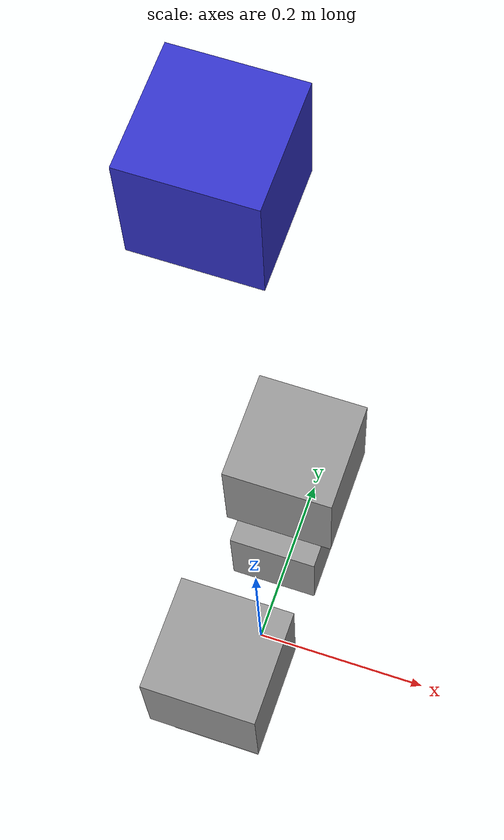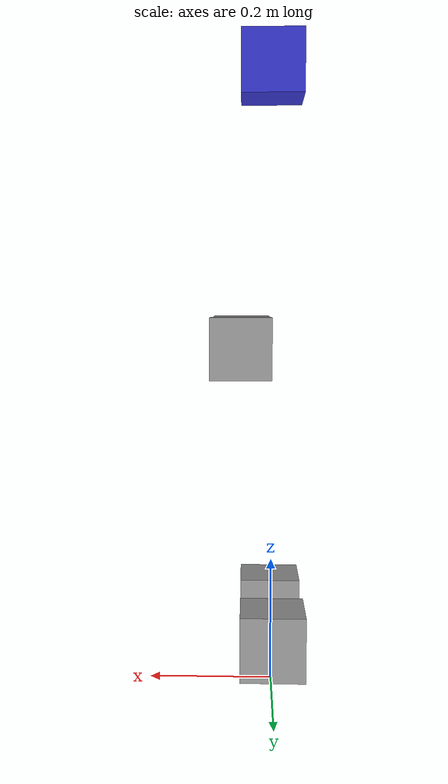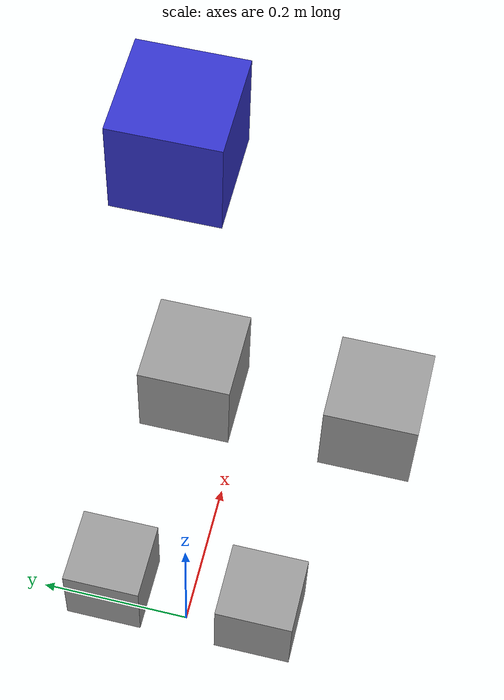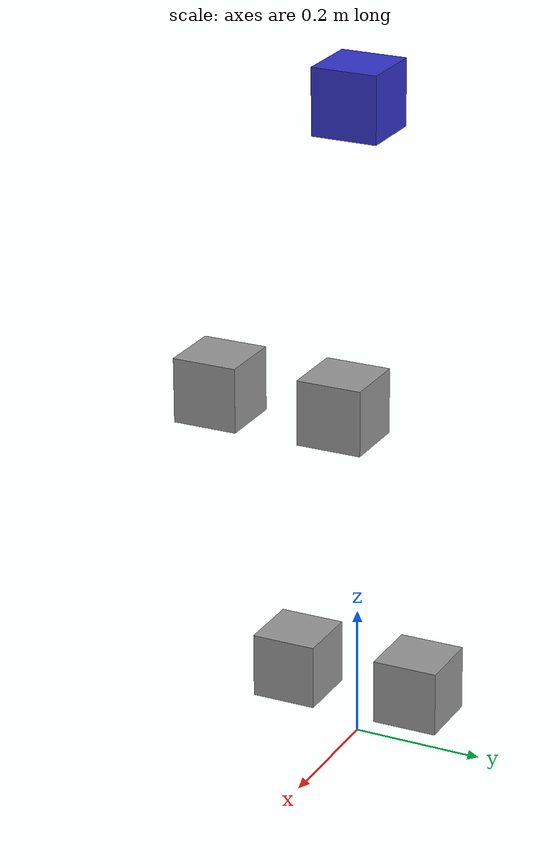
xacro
<?xml version="1.0"?>
<robot name="sprinter" xmlns:xacro="http://www.ros.org/wiki/xacro">

  <xacro:include filename="$(find sprinter_description)/urdf/leg_macro.xacro" />

  <material name="Grey"><color rgba="0.6 0.6 0.6 1.0"/></material>
  <material name="Blue"><color rgba="0.2 0.2 0.8 1.0"/></material>

  <link name="world"/>

  <link name="base_link">
    <visual>
      <geometry>
        <box size="0.1 0.1 0.1"/>
      </geometry>
      <material name="Blue"/>
    </visual>
    <collision>
      <geometry>
        <box size="0.1 0.1 0.1"/>
      </geometry>
    </collision>
    <inertial>
      <mass value="15.0"/>
      <inertia ixx="0.5" ixy="0" ixz="0" iyy="0.5" iyz="0" izz="0.5"/>
    </inertial>
  </link>

  <joint name="world_to_base_joint" type="fixed">
    <parent link="world"/>
    <child link="base_link"/>
    <origin xyz="0 0 1.0" rpy="0 0 0"/>
  </joint>

  <xacro:leg prefix="left" reflect="1"/>
  <xacro:leg prefix="right" reflect="-1"/>

  <ros2_control name="GazeboSystem" type="system">
    <hardware>
      <plugin>gz_ros2_control/GazeboSimSystem</plugin>
    </hardware>
    <joint name="left_hip_joint">
      <command_interface name="position"/>
      <state_interface name="position"/><state_interface name="velocity"/>
    </joint>
    <joint name="right_hip_joint">
      <command_interface name="position"/>
      <state_interface name="position"/><state_interface name="velocity"/>
    </joint>
    <joint name="left_knee_joint">
      <command_interface name="position"/>
      <state_interface name="position"/><state_interface name="velocity"/>
    </joint>
    <joint name="right_knee_joint">
      <command_interface name="position"/>
      <state_interface name="position"/><state_interface name="velocity"/>
    </joint>
  </ros2_control>

  <xacro:arg name="controllers_file" default=""/>

  <gazebo>
    <plugin filename="libgz_ros2_control-system.so" name="gz_ros2_control::GazeboSimROS2ControlPlugin">
        <parameters>$(arg controllers_file)</parameters>
    </plugin>
  </gazebo>

</robot>

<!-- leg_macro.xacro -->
<robot xmlns:xacro="http://www.ros.org/wiki/xacro">

  <!-- LEG MACRO                                                           -->
  <xacro:macro name="leg" params="prefix reflect">

    <!-- Hip Joint -->
    <joint name="${prefix}_hip_joint" type="revolute">
      <parent link="base_link"/>
      <child link="${prefix}_thigh_link"/>
      <origin xyz="0 ${0.1 * reflect} 0" rpy="0 0 0"/>
      <axis xyz="0 1 0"/>
      <limit lower="-1.57" upper="1.57" effort="100" velocity="10"/>
    </joint>

    <!-- Thigh Link - Oberschenkel -->
    <link name="${prefix}_thigh_link">
      <visual>
        <origin xyz="0.05 -0.10 -0.45" rpy="1.5708 0 0"/>
        <geometry>
          <box size="0.1 0.1 0.1"/>
        </geometry>
        <material name="Grey"/>
      </visual>
      <collision>
        <origin xyz="0.05 -0.10 -0.45" rpy="1.5708 0 0"/>
        <geometry>
          <box size="0.1 0.1 0.1"/>
        </geometry>
      </collision>
      <inertial>
        <mass value="5.0"/>
        <inertia ixx="0.1" ixy="0" ixz="0" iyy="0.1" iyz="0" izz="0.01"/>
      </inertial>
    </link>

    <!-- Knee Joint -->
    <joint name="${prefix}_knee_joint" type="revolute">
      <parent link="${prefix}_thigh_link"/>
      <child link="${prefix}_shank_link"/>
      <origin xyz="0 0 -0.45" rpy="0 0 0"/>
      <axis xyz="0 1 0"/>
      <limit lower="0" upper="2.0" effort="100" velocity="10"/>
    </joint>

    <!-- Shank Link - Bein -->
    <link name="${prefix}_shank_link">
      <visual>
        <origin xyz="0 0 -0.45" rpy="1.5708 0 -1.5708"/>
        <geometry>
          <box size="0.1 0.1 0.1"/>
        </geometry>
        <material name="Grey"/>
      </visual>
      <collision>
        <origin xyz="0 0 -0.45" rpy="1.5708 0 -1.5708"/>
        <geometry>
          <box size="0.1 0.1 0.1"/>
        </geometry>
      </collision>
      <inertial>
        <mass value="3.5"/>
        <inertia ixx="0.1" ixy="0" ixz="0" iyy="0.1" iyz="0" izz="0.01"/>
      </inertial>
    </link>

  </xacro:macro>

</robot>
